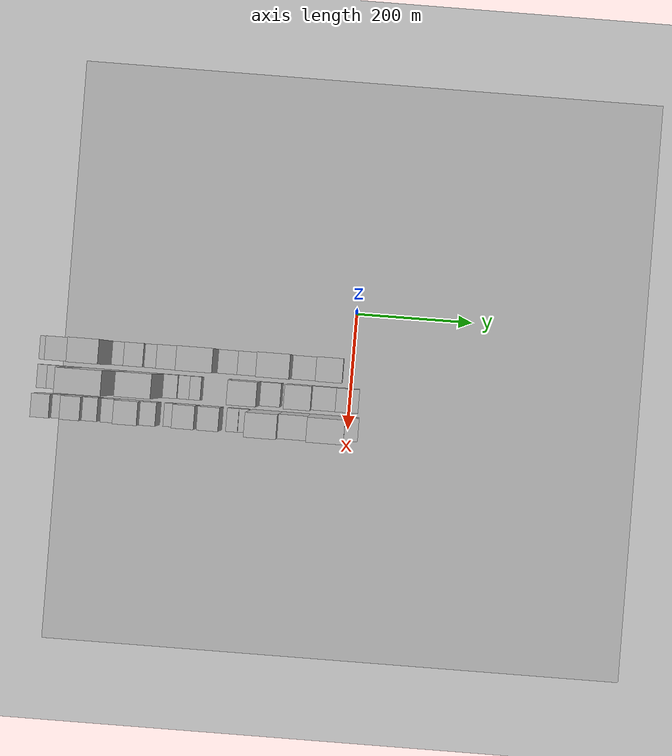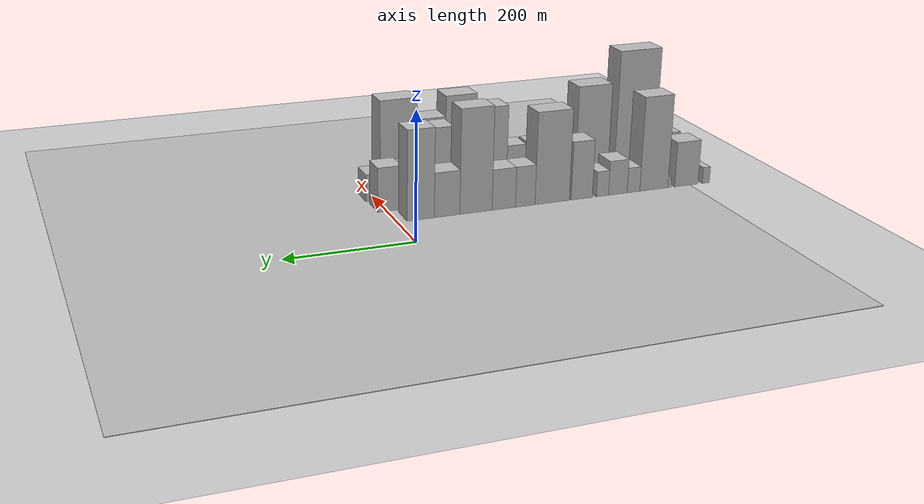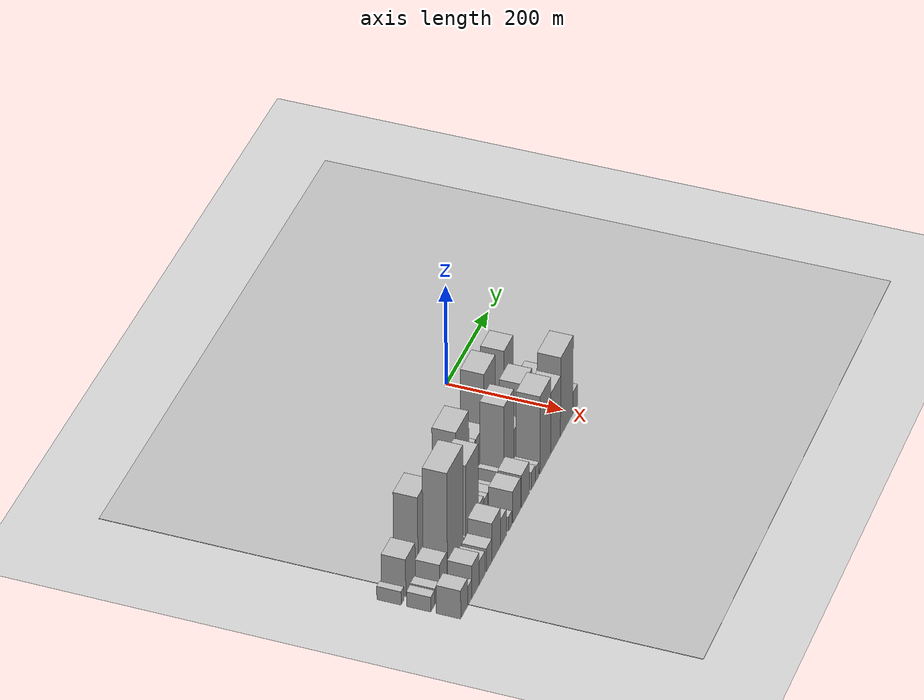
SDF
<sdf version="1.6">
 <world name="default">
  <include><name>ground_plane_1</name><uri>model://HANNAS_ground_plane</uri></include>
  <include>
   <name>ground_plane_2</name>
   <uri>model://HANNAS_ground_plane</uri>
   <pose>100 0 0  0 0 0</pose>
  </include>
  <model name="building_1">
   <static>1</static>
   <pose>100.0000 -529.4217 0 0.000000 0.000000 0.000000</pose>
   <link name="link">
    <pose>0 0 13.50 0 0 0</pose>
    <collision name="collision"><geometry><box><size>40.0000 13.1565 27.0000</size></box></geometry></collision>
    <visual name="visual">
     <cast_shadows>0</cast_shadows>
     <geometry><box><size>40.0000 13.1565 27.0000</size></box></geometry>
     <material>
      <script>
       <uri>model://HANNAS_wall/materials/scripts</uri>
       <uri>model://HANNAS_wall/materials/textures</uri>
       <name>vrc/HANNAS_wall</name>
      </script>
     </material>
    </visual>
   </link>
  </model>
  <model name="building_2">
   <static>1</static>
   <pose>100.0000 -493.3523 0 0.000000 0.000000 0.000000</pose>
   <link name="link">
    <pose>0 0 37.50 0 0 0</pose>
    <collision name="collision"><geometry><box><size>40.0000 42.9823 75.0000</size></box></geometry></collision>
    <visual name="visual">
     <cast_shadows>0</cast_shadows>
     <geometry><box><size>40.0000 42.9823 75.0000</size></box></geometry>
     <material>
      <script>
       <uri>model://HANNAS_wall/materials/scripts</uri>
       <uri>model://HANNAS_wall/materials/textures</uri>
       <name>vrc/HANNAS_wall</name>
      </script>
     </material>
    </visual>
   </link>
  </model>
  <model name="building_3">
   <static>1</static>
   <pose>100.0000 -462.7015 0 0.000000 0.000000 0.000000</pose>
   <link name="link">
    <pose>0 0 7.50 0 0 0</pose>
    <collision name="collision"><geometry><box><size>40.0000 6.3195 15.0000</size></box></geometry></collision>
    <visual name="visual">
     <cast_shadows>0</cast_shadows>
     <geometry><box><size>40.0000 6.3195 15.0000</size></box></geometry>
     <material>
      <script>
       <uri>model://HANNAS_wall/materials/scripts</uri>
       <uri>model://HANNAS_wall/materials/textures</uri>
       <name>vrc/HANNAS_wall</name>
      </script>
     </material>
    </visual>
   </link>
  </model>
  <model name="building_4">
   <static>1</static>
   <pose>100.0000 -434.2183 0 0.000000 0.000000 0.000000</pose>
   <link name="link">
    <pose>0 0 78.00 0 0 0</pose>
    <collision name="collision"><geometry><box><size>40.0000 50.6469 156.0000</size></box></geometry></collision>
    <visual name="visual">
     <cast_shadows>0</cast_shadows>
     <geometry><box><size>40.0000 50.6469 156.0000</size></box></geometry>
     <material>
      <script>
       <uri>model://HANNAS_wall/materials/scripts</uri>
       <uri>model://HANNAS_wall/materials/textures</uri>
       <name>vrc/HANNAS_wall</name>
      </script>
     </material>
    </visual>
   </link>
  </model>
  <model name="building_5">
   <static>1</static>
   <pose>100.0000 -397.5748 0 0.000000 0.000000 0.000000</pose>
   <link name="link">
    <pose>0 0 21.00 0 0 0</pose>
    <collision name="collision"><geometry><box><size>40.0000 22.6401 42.0000</size></box></geometry></collision>
    <visual name="visual">
     <cast_shadows>0</cast_shadows>
     <geometry><box><size>40.0000 22.6401 42.0000</size></box></geometry>
     <material>
      <script>
       <uri>model://HANNAS_wall/materials/scripts</uri>
       <uri>model://HANNAS_wall/materials/textures</uri>
       <name>vrc/HANNAS_wall</name>
      </script>
     </material>
    </visual>
   </link>
  </model>
  <model name="building_6">
   <static>1</static>
   <pose>100.0000 -369.7955 0 0.000000 0.000000 0.000000</pose>
   <link name="link">
    <pose>0 0 28.50 0 0 0</pose>
    <collision name="collision"><geometry><box><size>40.0000 32.9186 57.0000</size></box></geometry></collision>
    <visual name="visual">
     <cast_shadows>0</cast_shadows>
     <geometry><box><size>40.0000 32.9186 57.0000</size></box></geometry>
     <material>
      <script>
       <uri>model://HANNAS_wall/materials/scripts</uri>
       <uri>model://HANNAS_wall/materials/textures</uri>
       <name>vrc/HANNAS_wall</name>
      </script>
     </material>
    </visual>
   </link>
  </model>
  <model name="building_7">
   <static>1</static>
   <pose>100.0000 -342.6169 0 0.000000 0.000000 0.000000</pose>
   <link name="link">
    <pose>0 0 21.00 0 0 0</pose>
    <collision name="collision"><geometry><box><size>40.0000 21.4385 42.0000</size></box></geometry></collision>
    <visual name="visual">
     <cast_shadows>0</cast_shadows>
     <geometry><box><size>40.0000 21.4385 42.0000</size></box></geometry>
     <material>
      <script>
       <uri>model://HANNAS_wall/materials/scripts</uri>
       <uri>model://HANNAS_wall/materials/textures</uri>
       <name>vrc/HANNAS_wall</name>
      </script>
     </material>
    </visual>
   </link>
  </model>
  <model name="building_8">
   <static>1</static>
   <pose>100.0000 -306.4331 0 0.000000 0.000000 0.000000</pose>
   <link name="link">
    <pose>0 0 48.00 0 0 0</pose>
    <collision name="collision"><geometry><box><size>40.0000 36.9291 96.0000</size></box></geometry></collision>
    <visual name="visual">
     <cast_shadows>0</cast_shadows>
     <geometry><box><size>40.0000 36.9291 96.0000</size></box></geometry>
     <material>
      <script>
       <uri>model://HANNAS_wall/materials/scripts</uri>
       <uri>model://HANNAS_wall/materials/textures</uri>
       <name>vrc/HANNAS_wall</name>
      </script>
     </material>
    </visual>
   </link>
  </model>
  <model name="building_9">
   <static>1</static>
   <pose>100.0000 -255.4994 0 0.000000 0.000000 0.000000</pose>
   <link name="link">
    <pose>0 0 75.00 0 0 0</pose>
    <collision name="collision"><geometry><box><size>40.0000 58.9382 150.0000</size></box></geometry></collision>
    <visual name="visual">
     <cast_shadows>0</cast_shadows>
     <geometry><box><size>40.0000 58.9382 150.0000</size></box></geometry>
     <material>
      <script>
       <uri>model://HANNAS_wall/materials/scripts</uri>
       <uri>model://HANNAS_wall/materials/textures</uri>
       <name>vrc/HANNAS_wall</name>
      </script>
     </material>
    </visual>
   </link>
  </model>
  <model name="building_10">
   <static>1</static>
   <pose>100.0000 -209.4669 0 0.000000 0.000000 0.000000</pose>
   <link name="link">
    <pose>0 0 33.00 0 0 0</pose>
    <collision name="collision"><geometry><box><size>40.0000 33.1269 66.0000</size></box></geometry></collision>
    <visual name="visual">
     <cast_shadows>0</cast_shadows>
     <geometry><box><size>40.0000 33.1269 66.0000</size></box></geometry>
     <material>
      <script>
       <uri>model://HANNAS_wall/materials/scripts</uri>
       <uri>model://HANNAS_wall/materials/textures</uri>
       <name>vrc/HANNAS_wall</name>
      </script>
     </material>
    </visual>
   </link>
  </model>
  <model name="building_11">
   <static>1</static>
   <pose>100.0000 -173.3892 0 0.000000 0.000000 0.000000</pose>
   <link name="link">
    <pose>0 0 33.00 0 0 0</pose>
    <collision name="collision"><geometry><box><size>40.0000 39.0284 66.0000</size></box></geometry></collision>
    <visual name="visual">
     <cast_shadows>0</cast_shadows>
     <geometry><box><size>40.0000 39.0284 66.0000</size></box></geometry>
     <material>
      <script>
       <uri>model://HANNAS_wall/materials/scripts</uri>
       <uri>model://HANNAS_wall/materials/textures</uri>
       <name>vrc/HANNAS_wall</name>
      </script>
     </material>
    </visual>
   </link>
  </model>
  <model name="building_12">
   <static>1</static>
   <pose>100.0000 -127.2653 0 0.000000 0.000000 0.000000</pose>
   <link name="link">
    <pose>0 0 84.00 0 0 0</pose>
    <collision name="collision"><geometry><box><size>40.0000 53.2196 168.0000</size></box></geometry></collision>
    <visual name="visual">
     <cast_shadows>0</cast_shadows>
     <geometry><box><size>40.0000 53.2196 168.0000</size></box></geometry>
     <material>
      <script>
       <uri>model://HANNAS_wall/materials/scripts</uri>
       <uri>model://HANNAS_wall/materials/textures</uri>
       <name>vrc/HANNAS_wall</name>
      </script>
     </material>
    </visual>
   </link>
  </model>
  <model name="building_13">
   <static>1</static>
   <pose>100.0000 -79.9230 0 0.000000 0.000000 0.000000</pose>
   <link name="link">
    <pose>0 0 36.00 0 0 0</pose>
    <collision name="collision"><geometry><box><size>40.0000 41.4650 72.0000</size></box></geometry></collision>
    <visual name="visual">
     <cast_shadows>0</cast_shadows>
     <geometry><box><size>40.0000 41.4650 72.0000</size></box></geometry>
     <material>
      <script>
       <uri>model://HANNAS_wall/materials/scripts</uri>
       <uri>model://HANNAS_wall/materials/textures</uri>
       <name>vrc/HANNAS_wall</name>
      </script>
     </material>
    </visual>
   </link>
  </model>
  <model name="building_14">
   <static>1</static>
   <pose>100.0000 -37.3843 0 0.000000 0.000000 0.000000</pose>
   <link name="link">
    <pose>0 0 72.00 0 0 0</pose>
    <collision name="collision"><geometry><box><size>40.0000 43.6123 144.0000</size></box></geometry></collision>
    <visual name="visual">
     <cast_shadows>0</cast_shadows>
     <geometry><box><size>40.0000 43.6123 144.0000</size></box></geometry>
     <material>
      <script>
       <uri>model://HANNAS_wall/materials/scripts</uri>
       <uri>model://HANNAS_wall/materials/textures</uri>
       <name>vrc/HANNAS_wall</name>
      </script>
     </material>
    </visual>
   </link>
  </model>
  <model name="building_31">
   <static>1</static>
   <pose>149.0000 -527.3067 0 0.000000 0.000000 0.000000</pose>
   <link name="link">
    <pose>0 0 15.00 0 0 0</pose>
    <collision name="collision"><geometry><box><size>40.0000 17.3866 30.0000</size></box></geometry></collision>
    <visual name="visual">
     <cast_shadows>0</cast_shadows>
     <geometry><box><size>40.0000 17.3866 30.0000</size></box></geometry>
     <material>
      <script>
       <uri>model://HANNAS_wall/materials/scripts</uri>
       <uri>model://HANNAS_wall/materials/textures</uri>
       <name>vrc/HANNAS_wall</name>
      </script>
     </material>
    </visual>
   </link>
  </model>
  <model name="building_32">
   <static>1</static>
   <pose>149.0000 -509.4742 0 0.000000 0.000000 0.000000</pose>
   <link name="link">
    <pose>0 0 16.50 0 0 0</pose>
    <collision name="collision"><geometry><box><size>40.0000 18.2785 33.0000</size></box></geometry></collision>
    <visual name="visual">
     <cast_shadows>0</cast_shadows>
     <geometry><box><size>40.0000 18.2785 33.0000</size></box></geometry>
     <material>
      <script>
       <uri>model://HANNAS_wall/materials/scripts</uri>
       <uri>model://HANNAS_wall/materials/textures</uri>
       <name>vrc/HANNAS_wall</name>
      </script>
     </material>
    </visual>
   </link>
  </model>
  <model name="building_33">
   <static>1</static>
   <pose>149.0000 -479.9805 0 0.000000 0.000000 0.000000</pose>
   <link name="link">
    <pose>0 0 31.50 0 0 0</pose>
    <collision name="collision"><geometry><box><size>40.0000 32.7088 63.0000</size></box></geometry></collision>
    <visual name="visual">
     <cast_shadows>0</cast_shadows>
     <geometry><box><size>40.0000 32.7088 63.0000</size></box></geometry>
     <material>
      <script>
       <uri>model://HANNAS_wall/materials/scripts</uri>
       <uri>model://HANNAS_wall/materials/textures</uri>
       <name>vrc/HANNAS_wall</name>
      </script>
     </material>
    </visual>
   </link>
  </model>
  <model name="building_34">
   <static>1</static>
   <pose>149.0000 -424.2670 0 0.000000 0.000000 0.000000</pose>
   <link name="link">
    <pose>0 0 109.50 0 0 0</pose>
    <collision name="collision"><geometry><box><size>40.0000 72.7183 219.0000</size></box></geometry></collision>
    <visual name="visual">
     <cast_shadows>0</cast_shadows>
     <geometry><box><size>40.0000 72.7183 219.0000</size></box></geometry>
     <material>
      <script>
       <uri>model://HANNAS_wall/materials/scripts</uri>
       <uri>model://HANNAS_wall/materials/textures</uri>
       <name>vrc/HANNAS_wall</name>
      </script>
     </material>
    </visual>
   </link>
  </model>
  <model name="building_35">
   <static>1</static>
   <pose>149.0000 -382.2110 0 0.000000 0.000000 0.000000</pose>
   <link name="link">
    <pose>0 0 13.50 0 0 0</pose>
    <collision name="collision"><geometry><box><size>40.0000 11.3936 27.0000</size></box></geometry></collision>
    <visual name="visual">
     <cast_shadows>0</cast_shadows>
     <geometry><box><size>40.0000 11.3936 27.0000</size></box></geometry>
     <material>
      <script>
       <uri>model://HANNAS_wall/materials/scripts</uri>
       <uri>model://HANNAS_wall/materials/textures</uri>
       <name>vrc/HANNAS_wall</name>
      </script>
     </material>
    </visual>
   </link>
  </model>
  <model name="building_36">
   <static>1</static>
   <pose>149.0000 -347.4596 0 0.000000 0.000000 0.000000</pose>
   <link name="link">
    <pose>0 0 84.00 0 0 0</pose>
    <collision name="collision"><geometry><box><size>40.0000 58.1094 168.0000</size></box></geometry></collision>
    <visual name="visual">
     <cast_shadows>0</cast_shadows>
     <geometry><box><size>40.0000 58.1094 168.0000</size></box></geometry>
     <material>
      <script>
       <uri>model://HANNAS_wall/materials/scripts</uri>
       <uri>model://HANNAS_wall/materials/textures</uri>
       <name>vrc/HANNAS_wall</name>
      </script>
     </material>
    </visual>
   </link>
  </model>
  <model name="building_37">
   <static>1</static>
   <pose>149.0000 -306.1658 0 0.000000 0.000000 0.000000</pose>
   <link name="link">
    <pose>0 0 21.00 0 0 0</pose>
    <collision name="collision"><geometry><box><size>40.0000 24.4781 42.0000</size></box></geometry></collision>
    <visual name="visual">
     <cast_shadows>0</cast_shadows>
     <geometry><box><size>40.0000 24.4781 42.0000</size></box></geometry>
     <material>
      <script>
       <uri>model://HANNAS_wall/materials/scripts</uri>
       <uri>model://HANNAS_wall/materials/textures</uri>
       <name>vrc/HANNAS_wall</name>
      </script>
     </material>
    </visual>
   </link>
  </model>
  <model name="building_38">
   <static>1</static>
   <pose>149.0000 -284.1589 0 0.000000 0.000000 0.000000</pose>
   <link name="link">
    <pose>0 0 16.50 0 0 0</pose>
    <collision name="collision"><geometry><box><size>40.0000 19.5357 33.0000</size></box></geometry></collision>
    <visual name="visual">
     <cast_shadows>0</cast_shadows>
     <geometry><box><size>40.0000 19.5357 33.0000</size></box></geometry>
     <material>
      <script>
       <uri>model://HANNAS_wall/materials/scripts</uri>
       <uri>model://HANNAS_wall/materials/textures</uri>
       <name>vrc/HANNAS_wall</name>
      </script>
     </material>
    </visual>
   </link>
  </model>
  <model name="building_39">
   <static>1</static>
   <pose>149.0000 -264.7578 0 0.000000 0.000000 0.000000</pose>
   <link name="link">
    <pose>0 0 16.50 0 0 0</pose>
    <collision name="collision"><geometry><box><size>40.0000 19.2665 33.0000</size></box></geometry></collision>
    <visual name="visual">
     <cast_shadows>0</cast_shadows>
     <geometry><box><size>40.0000 19.2665 33.0000</size></box></geometry>
     <material>
      <script>
       <uri>model://HANNAS_wall/materials/scripts</uri>
       <uri>model://HANNAS_wall/materials/textures</uri>
       <name>vrc/HANNAS_wall</name>
      </script>
     </material>
    </visual>
   </link>
  </model>
  <model name="building_40">
   <static>1</static>
   <pose>149.0000 -204.3982 0 0.000000 0.000000 0.000000</pose>
   <link name="link">
    <pose>0 0 12.00 0 0 0</pose>
    <collision name="collision"><geometry><box><size>40.0000 11.1509 24.0000</size></box></geometry></collision>
    <visual name="visual">
     <cast_shadows>0</cast_shadows>
     <geometry><box><size>40.0000 11.1509 24.0000</size></box></geometry>
     <material>
      <script>
       <uri>model://HANNAS_wall/materials/scripts</uri>
       <uri>model://HANNAS_wall/materials/textures</uri>
       <name>vrc/HANNAS_wall</name>
      </script>
     </material>
    </visual>
   </link>
  </model>
  <model name="building_41">
   <static>1</static>
   <pose>149.0000 -175.0603 0 0.000000 0.000000 0.000000</pose>
   <link name="link">
    <pose>0 0 75.00 0 0 0</pose>
    <collision name="collision"><geometry><box><size>40.0000 47.5249 150.0000</size></box></geometry></collision>
    <visual name="visual">
     <cast_shadows>0</cast_shadows>
     <geometry><box><size>40.0000 47.5249 150.0000</size></box></geometry>
     <material>
      <script>
       <uri>model://HANNAS_wall/materials/scripts</uri>
       <uri>model://HANNAS_wall/materials/textures</uri>
       <name>vrc/HANNAS_wall</name>
      </script>
     </material>
    </visual>
   </link>
  </model>
  <model name="building_42">
   <static>1</static>
   <pose>149.0000 -134.1889 0 0.000000 0.000000 0.000000</pose>
   <link name="link">
    <pose>0 0 33.00 0 0 0</pose>
    <collision name="collision"><geometry><box><size>40.0000 34.2179 66.0000</size></box></geometry></collision>
    <visual name="visual">
     <cast_shadows>0</cast_shadows>
     <geometry><box><size>40.0000 34.2179 66.0000</size></box></geometry>
     <material>
      <script>
       <uri>model://HANNAS_wall/materials/scripts</uri>
       <uri>model://HANNAS_wall/materials/textures</uri>
       <name>vrc/HANNAS_wall</name>
      </script>
     </material>
    </visual>
   </link>
  </model>
  <model name="building_43">
   <static>1</static>
   <pose>149.0000 -86.0580 0 0.000000 0.000000 0.000000</pose>
   <link name="link">
    <pose>0 0 63.00 0 0 0</pose>
    <collision name="collision"><geometry><box><size>40.0000 44.0440 126.0000</size></box></geometry></collision>
    <visual name="visual">
     <cast_shadows>0</cast_shadows>
     <geometry><box><size>40.0000 44.0440 126.0000</size></box></geometry>
     <material>
      <script>
       <uri>model://HANNAS_wall/materials/scripts</uri>
       <uri>model://HANNAS_wall/materials/textures</uri>
       <name>vrc/HANNAS_wall</name>
      </script>
     </material>
    </visual>
   </link>
  </model>
  <model name="building_44">
   <static>1</static>
   <pose>149.0000 -44.0288 0 0.000000 0.000000 0.000000</pose>
   <link name="link">
    <pose>0 0 34.50 0 0 0</pose>
    <collision name="collision"><geometry><box><size>40.0000 40.0143 69.0000</size></box></geometry></collision>
    <visual name="visual">
     <cast_shadows>0</cast_shadows>
     <geometry><box><size>40.0000 40.0143 69.0000</size></box></geometry>
     <material>
      <script>
       <uri>model://HANNAS_wall/materials/scripts</uri>
       <uri>model://HANNAS_wall/materials/textures</uri>
       <name>vrc/HANNAS_wall</name>
      </script>
     </material>
    </visual>
   </link>
  </model>
  <model name="building_45">
   <static>1</static>
   <pose>149.0000 -4.7475 0 0.000000 0.000000 0.000000</pose>
   <link name="link">
    <pose>0 0 36.00 0 0 0</pose>
    <collision name="collision"><geometry><box><size>40.0000 38.5484 72.0000</size></box></geometry></collision>
    <visual name="visual">
     <cast_shadows>0</cast_shadows>
     <geometry><box><size>40.0000 38.5484 72.0000</size></box></geometry>
     <material>
      <script>
       <uri>model://HANNAS_wall/materials/scripts</uri>
       <uri>model://HANNAS_wall/materials/textures</uri>
       <name>vrc/HANNAS_wall</name>
      </script>
     </material>
    </visual>
   </link>
  </model>
  <model name="building_59">
   <static>1</static>
   <pose>198.0000 -520.3587 0 0.000000 0.000000 0.000000</pose>
   <link name="link">
    <pose>0 0 28.50 0 0 0</pose>
    <collision name="collision"><geometry><box><size>40.0000 31.2826 57.0000</size></box></geometry></collision>
    <visual name="visual">
     <cast_shadows>0</cast_shadows>
     <geometry><box><size>40.0000 31.2826 57.0000</size></box></geometry>
     <material>
      <script>
       <uri>model://HANNAS_wall/materials/scripts</uri>
       <uri>model://HANNAS_wall/materials/textures</uri>
       <name>vrc/HANNAS_wall</name>
      </script>
     </material>
    </visual>
   </link>
  </model>
  <model name="building_60">
   <static>1</static>
   <pose>198.0000 -494.6879 0 0.000000 0.000000 0.000000</pose>
   <link name="link">
    <pose>0 0 19.50 0 0 0</pose>
    <collision name="collision"><geometry><box><size>40.0000 20.0590 39.0000</size></box></geometry></collision>
    <visual name="visual">
     <cast_shadows>0</cast_shadows>
     <geometry><box><size>40.0000 20.0590 39.0000</size></box></geometry>
     <material>
      <script>
       <uri>model://HANNAS_wall/materials/scripts</uri>
       <uri>model://HANNAS_wall/materials/textures</uri>
       <name>vrc/HANNAS_wall</name>
      </script>
     </material>
    </visual>
   </link>
  </model>
  <model name="building_61">
   <static>1</static>
   <pose>198.0000 -467.7817 0 0.000000 0.000000 0.000000</pose>
   <link name="link">
    <pose>0 0 33.00 0 0 0</pose>
    <collision name="collision"><geometry><box><size>40.0000 33.7532 66.0000</size></box></geometry></collision>
    <visual name="visual">
     <cast_shadows>0</cast_shadows>
     <geometry><box><size>40.0000 33.7532 66.0000</size></box></geometry>
     <material>
      <script>
       <uri>model://HANNAS_wall/materials/scripts</uri>
       <uri>model://HANNAS_wall/materials/textures</uri>
       <name>vrc/HANNAS_wall</name>
      </script>
     </material>
    </visual>
   </link>
  </model>
  <model name="building_62">
   <static>1</static>
   <pose>198.0000 -438.1051 0 0.000000 0.000000 0.000000</pose>
   <link name="link">
    <pose>0 0 24.00 0 0 0</pose>
    <collision name="collision"><geometry><box><size>40.0000 25.6001 48.0000</size></box></geometry></collision>
    <visual name="visual">
     <cast_shadows>0</cast_shadows>
     <geometry><box><size>40.0000 25.6001 48.0000</size></box></geometry>
     <material>
      <script>
       <uri>model://HANNAS_wall/materials/scripts</uri>
       <uri>model://HANNAS_wall/materials/textures</uri>
       <name>vrc/HANNAS_wall</name>
      </script>
     </material>
    </visual>
   </link>
  </model>
  <model name="building_63">
   <static>1</static>
   <pose>198.0000 -406.0688 0 0.000000 0.000000 0.000000</pose>
   <link name="link">
    <pose>0 0 24.00 0 0 0</pose>
    <collision name="collision"><geometry><box><size>40.0000 26.4725 48.0000</size></box></geometry></collision>
    <visual name="visual">
     <cast_shadows>0</cast_shadows>
     <geometry><box><size>40.0000 26.4725 48.0000</size></box></geometry>
     <material>
      <script>
       <uri>model://HANNAS_wall/materials/scripts</uri>
       <uri>model://HANNAS_wall/materials/textures</uri>
       <name>vrc/HANNAS_wall</name>
      </script>
     </material>
    </visual>
   </link>
  </model>
  <model name="building_64">
   <static>1</static>
   <pose>198.0000 -372.7004 0 0.000000 0.000000 0.000000</pose>
   <link name="link">
    <pose>0 0 39.00 0 0 0</pose>
    <collision name="collision"><geometry><box><size>40.0000 40.2644 78.0000</size></box></geometry></collision>
    <visual name="visual">
     <cast_shadows>0</cast_shadows>
     <geometry><box><size>40.0000 40.2644 78.0000</size></box></geometry>
     <material>
      <script>
       <uri>model://HANNAS_wall/materials/scripts</uri>
       <uri>model://HANNAS_wall/materials/textures</uri>
       <name>vrc/HANNAS_wall</name>
      </script>
     </material>
    </visual>
   </link>
  </model>
  <model name="building_65">
   <static>1</static>
   <pose>198.0000 -338.9211 0 0.000000 0.000000 0.000000</pose>
   <link name="link">
    <pose>0 0 27.00 0 0 0</pose>
    <collision name="collision"><geometry><box><size>40.0000 27.2942 54.0000</size></box></geometry></collision>
    <visual name="visual">
     <cast_shadows>0</cast_shadows>
     <geometry><box><size>40.0000 27.2942 54.0000</size></box></geometry>
     <material>
      <script>
       <uri>model://HANNAS_wall/materials/scripts</uri>
       <uri>model://HANNAS_wall/materials/textures</uri>
       <name>vrc/HANNAS_wall</name>
      </script>
     </material>
    </visual>
   </link>
  </model>
  <model name="building_66">
   <static>1</static>
   <pose>198.0000 -307.1257 0 0.000000 0.000000 0.000000</pose>
   <link name="link">
    <pose>0 0 15.00 0 0 0</pose>
    <collision name="collision"><geometry><box><size>40.0000 16.2966 30.0000</size></box></geometry></collision>
    <visual name="visual">
     <cast_shadows>0</cast_shadows>
     <geometry><box><size>40.0000 16.2966 30.0000</size></box></geometry>
     <material>
      <script>
       <uri>model://HANNAS_wall/materials/scripts</uri>
       <uri>model://HANNAS_wall/materials/textures</uri>
       <name>vrc/HANNAS_wall</name>
      </script>
     </material>
    </visual>
   </link>
  </model>
  <model name="building_67">
   <static>1</static>
   <pose>198.0000 -277.3882 0 0.000000 0.000000 0.000000</pose>
   <link name="link">
    <pose>0 0 33.00 0 0 0</pose>
    <collision name="collision"><geometry><box><size>40.0000 37.1783 66.0000</size></box></geometry></collision>
    <visual name="visual">
     <cast_shadows>0</cast_shadows>
     <geometry><box><size>40.0000 37.1783 66.0000</size></box></geometry>
     <material>
      <script>
       <uri>model://HANNAS_wall/materials/scripts</uri>
       <uri>model://HANNAS_wall/materials/textures</uri>
       <name>vrc/HANNAS_wall</name>
      </script>
     </material>
    </visual>
   </link>
  </model>
  <model name="building_68">
   <static>1</static>
   <pose>198.0000 -235.6119 0 0.000000 0.000000 0.000000</pose>
   <link name="link">
    <pose>0 0 33.00 0 0 0</pose>
    <collision name="collision"><geometry><box><size>40.0000 36.3744 66.0000</size></box></geometry></collision>
    <visual name="visual">
     <cast_shadows>0</cast_shadows>
     <geometry><box><size>40.0000 36.3744 66.0000</size></box></geometry>
     <material>
      <script>
       <uri>model://HANNAS_wall/materials/scripts</uri>
       <uri>model://HANNAS_wall/materials/textures</uri>
       <name>vrc/HANNAS_wall</name>
      </script>
     </material>
    </visual>
   </link>
  </model>
  <model name="building_69">
   <static>1</static>
   <pose>198.0000 -197.3521 0 0.000000 0.000000 0.000000</pose>
   <link name="link">
    <pose>0 0 18.00 0 0 0</pose>
    <collision name="collision"><geometry><box><size>40.0000 20.1452 36.0000</size></box></geometry></collision>
    <visual name="visual">
     <cast_shadows>0</cast_shadows>
     <geometry><box><size>40.0000 20.1452 36.0000</size></box></geometry>
     <material>
      <script>
       <uri>model://HANNAS_wall/materials/scripts</uri>
       <uri>model://HANNAS_wall/materials/textures</uri>
       <name>vrc/HANNAS_wall</name>
      </script>
     </material>
    </visual>
   </link>
  </model>
  <model name="building_70">
   <static>1</static>
   <pose>198.0000 -178.8861 0 0.000000 0.000000 0.000000</pose>
   <link name="link">
    <pose>0 0 15.00 0 0 0</pose>
    <collision name="collision"><geometry><box><size>40.0000 16.7869 30.0000</size></box></geometry></collision>
    <visual name="visual">
     <cast_shadows>0</cast_shadows>
     <geometry><box><size>40.0000 16.7869 30.0000</size></box></geometry>
     <material>
      <script>
       <uri>model://HANNAS_wall/materials/scripts</uri>
       <uri>model://HANNAS_wall/materials/textures</uri>
       <name>vrc/HANNAS_wall</name>
      </script>
     </material>
    </visual>
   </link>
  </model>
  <model name="building_71">
   <static>1</static>
   <pose>198.0000 -140.3686 0 0.000000 0.000000 0.000000</pose>
   <link name="link">
    <pose>0 0 79.50 0 0 0</pose>
    <collision name="collision"><geometry><box><size>40.0000 52.2480 159.0000</size></box></geometry></collision>
    <visual name="visual">
     <cast_shadows>0</cast_shadows>
     <geometry><box><size>40.0000 52.2480 159.0000</size></box></geometry>
     <material>
      <script>
       <uri>model://HANNAS_wall/materials/scripts</uri>
       <uri>model://HANNAS_wall/materials/textures</uri>
       <name>vrc/HANNAS_wall</name>
      </script>
     </material>
    </visual>
   </link>
  </model>
  <model name="building_72">
   <static>1</static>
   <pose>198.0000 -90.2105 0 0.000000 0.000000 0.000000</pose>
   <link name="link">
    <pose>0 0 63.00 0 0 0</pose>
    <collision name="collision"><geometry><box><size>40.0000 48.0682 126.0000</size></box></geometry></collision>
    <visual name="visual">
     <cast_shadows>0</cast_shadows>
     <geometry><box><size>40.0000 48.0682 126.0000</size></box></geometry>
     <material>
      <script>
       <uri>model://HANNAS_wall/materials/scripts</uri>
       <uri>model://HANNAS_wall/materials/textures</uri>
       <name>vrc/HANNAS_wall</name>
      </script>
     </material>
    </visual>
   </link>
  </model>
  <model name="building_73">
   <static>1</static>
   <pose>198.0000 -36.0107 0 0.000000 0.000000 0.000000</pose>
   <link name="link">
    <pose>0 0 81.00 0 0 0</pose>
    <collision name="collision"><geometry><box><size>40.0000 60.3314 162.0000</size></box></geometry></collision>
    <visual name="visual">
     <cast_shadows>0</cast_shadows>
     <geometry><box><size>40.0000 60.3314 162.0000</size></box></geometry>
     <material>
      <script>
       <uri>model://HANNAS_wall/materials/scripts</uri>
       <uri>model://HANNAS_wall/materials/textures</uri>
       <name>vrc/HANNAS_wall</name>
      </script>
     </material>
    </visual>
   </link>
  </model>
  <model name="building_74">
   <static>1</static>
   <pose>198.0000 5.8883 0 0.000000 0.000000 0.000000</pose>
   <link name="link">
    <pose>0 0 22.50 0 0 0</pose>
    <collision name="collision"><geometry><box><size>40.0000 23.4665 45.0000</size></box></geometry></collision>
    <visual name="visual">
     <cast_shadows>0</cast_shadows>
     <geometry><box><size>40.0000 23.4665 45.0000</size></box></geometry>
     <material>
      <script>
       <uri>model://HANNAS_wall/materials/scripts</uri>
       <uri>model://HANNAS_wall/materials/textures</uri>
       <name>vrc/HANNAS_wall</name>
      </script>
     </material>
    </visual>
   </link>
  </model>
 </world>
</sdf>
